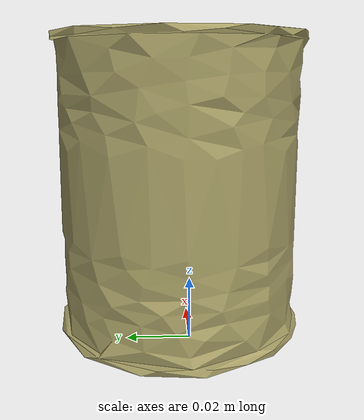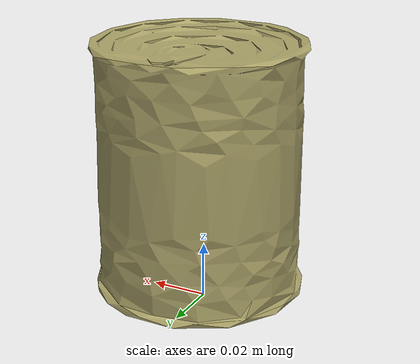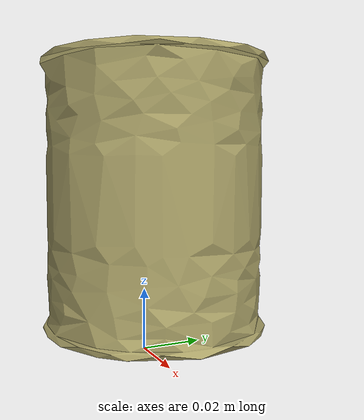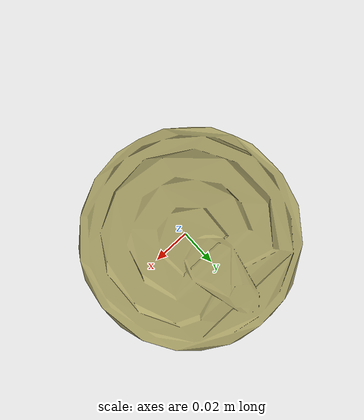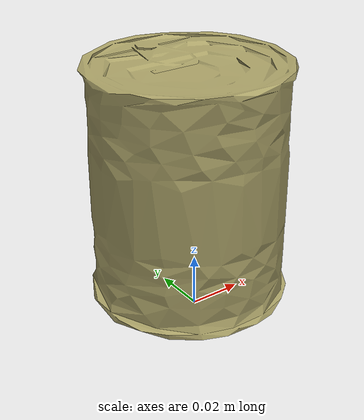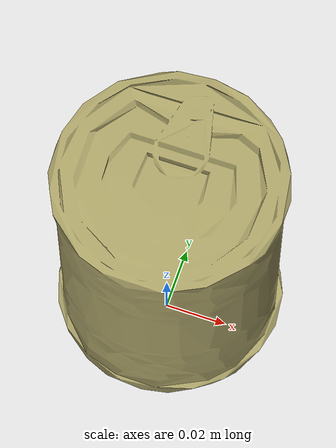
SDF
<?xml version="1.0" ?>
<sdf version="1.5">
	<model name="Can">
		<link name="Obj_4">
			<pose>0 0 0.01 1.57 0 0</pose>
			<inertial>
				<mass>17.113351821899414</mass>
				<pose>2.03549861907959e-05 0.04110730439424515 -0.0034202360548079014 3.2571827546235e-07 -3.7510421435626995e-08 6.208817637798347e-08</pose>
				<inertia>
					<ixx>0.02040497589111328</ixx>
					<ixy>0.0</ixy>
					<ixz>0.0</ixz>
					<iyy>0.016866682052612305</iyy>
					<iyz>0.0</iyz>
					<izz>0.020349002838134766</izz>
				</inertia>
			</inertial>
			<collision name="COL_Obj_4_Can_Coll">
				<pose>-6.841868162155151e-05 -0.003405243158340454 -0.0034073039423674345 3.878064660511882e-07 -6.85544989664777e-08 -3.1044088188991736e-08</pose>
				<geometry>
					<mesh>
						<uri>model://can/meshes/collisions/COL_Obj_4_Can_Coll.dae</uri>
						<scale>0.029999999329447746 0.029999999329447746 0.029999997466802597</scale>
					</mesh>
				</geometry>
			</collision>
			<visual name="VIS_Obj_4_Can">
				<pose>-6.841868162155151e-05 -0.003405243158340454 -0.0034073039423674345 3.878064660511882e-07 -6.85544989664777e-08 -3.1044088188991736e-08</pose>
				<geometry>
					<mesh>
						<uri>model://can/meshes/visual/VIS_Obj_4_Can.dae</uri>
						<scale>0.029999999329447746 0.029999999329447746 0.029999997466802597</scale>
					</mesh>
				</geometry>
			</visual>
		</link>
	</model>
</sdf>
